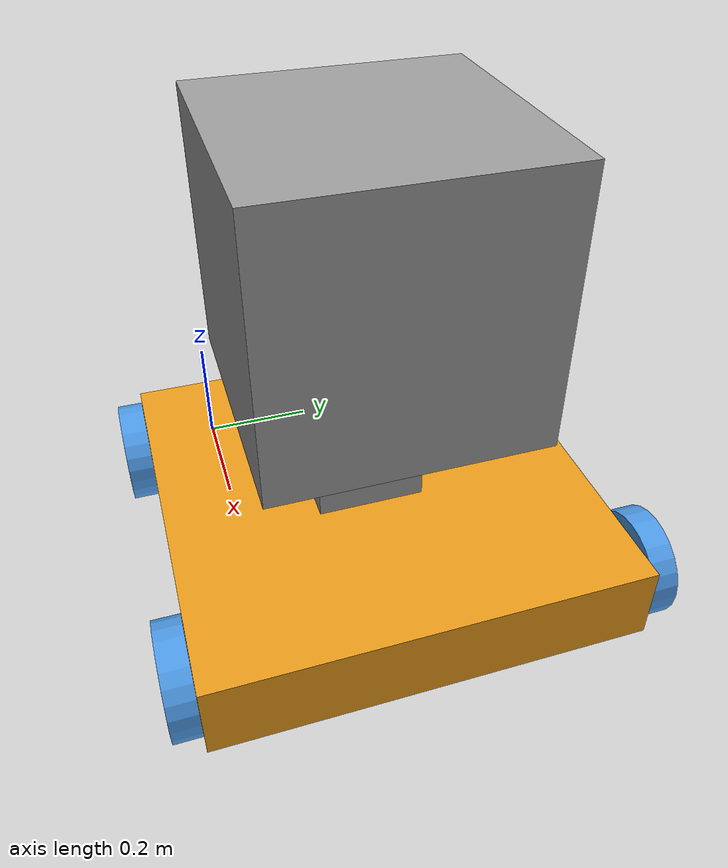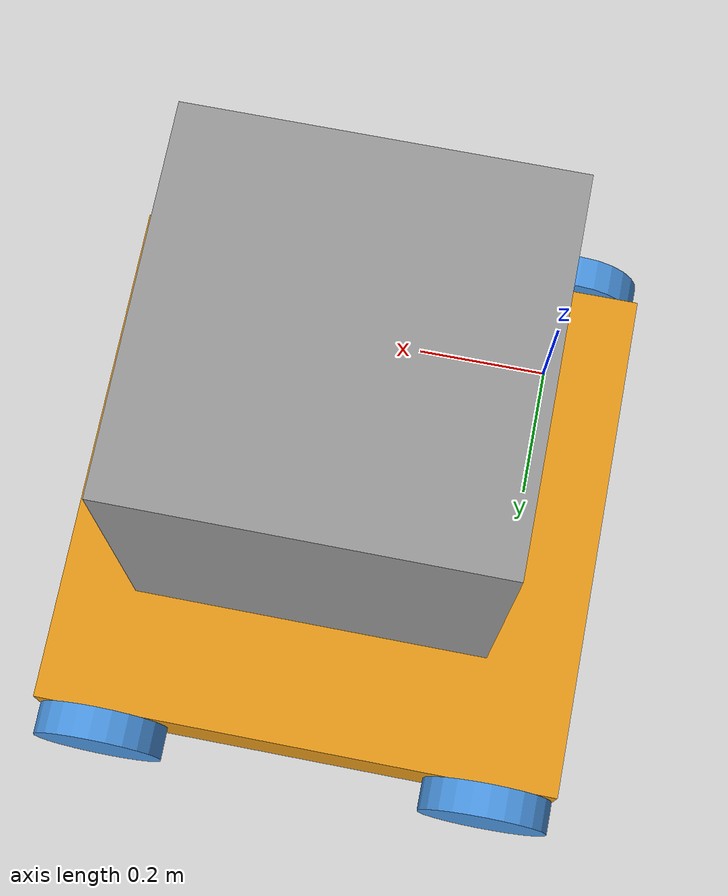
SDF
<?xml version='1.0'?>
<sdf version='1.7'>
  <model name='mobile_robot'>
    <link name='link_0'>
      <inertial>
        <mass>1</mass>
        <inertia>
          <ixx>0.166667</ixx>
          <ixy>0</ixy>
          <ixz>0</ixz>
          <iyy>0.166667</iyy>
          <iyz>0</iyz>
          <izz>0.166667</izz>
        </inertia>
        <pose>0 0 0 0 -0 0</pose>
      </inertial>
      <pose>0.273569 0.265109 -0.040714 0 -0 0</pose>
      <gravity>1</gravity>
      <self_collide>0</self_collide>
      <kinematic>0</kinematic>
      <enable_wind>0</enable_wind>
      <visual name='visual'>
        <pose>0 0 0 0 -0 0</pose>
        <geometry>
          <box>
            <size>0.8 0.8 0.15</size>
          </box>
        </geometry>
        <material>
          <lighting>1</lighting>
          <script>
            <uri>file://media/materials/scripts/gazebo.material</uri>
            <name>Gazebo/Grey</name>
          </script>
          <shader type='pixel'>
            <normal_map>__default__</normal_map>
          </shader>
          <ambient>0.9 0.6 0.1 1</ambient>
          <diffuse>0.9 0.6 0.1 1</diffuse>
          <specular>0.01 0.01 0.01 1</specular>
          <emissive>0 0 0 1</emissive>
        </material>
        <transparency>0</transparency>
        <cast_shadows>1</cast_shadows>
      </visual>
      <collision name='collision'>
        <laser_retro>0</laser_retro>
        <max_contacts>10</max_contacts>
        <pose>0 0 0 0 -0 0</pose>
        <geometry>
          <box>
            <size>0.8 0.8 0.15</size>
          </box>
        </geometry>
        <surface>
          <friction>
            <ode>
              <mu>1</mu>
              <mu2>1</mu2>
              <fdir1>0 0 0</fdir1>
              <slip1>0</slip1>
              <slip2>0</slip2>
            </ode>
            <torsional>
              <coefficient>1</coefficient>
              <patch_radius>0</patch_radius>
              <surface_radius>0</surface_radius>
              <use_patch_radius>1</use_patch_radius>
              <ode>
                <slip>0</slip>
              </ode>
            </torsional>
          </friction>
          <bounce>
            <restitution_coefficient>0</restitution_coefficient>
            <threshold>1e+06</threshold>
          </bounce>
          <contact>
            <collide_without_contact>0</collide_without_contact>
            <collide_without_contact_bitmask>1</collide_without_contact_bitmask>
            <collide_bitmask>1</collide_bitmask>
            <ode>
              <soft_cfm>0</soft_cfm>
              <soft_erp>0.2</soft_erp>
              <kp>1e+13</kp>
              <kd>1</kd>
              <max_vel>0.01</max_vel>
              <min_depth>0</min_depth>
            </ode>
            <bullet>
              <split_impulse>1</split_impulse>
              <split_impulse_penetration_threshold>-0.01</split_impulse_penetration_threshold>
              <soft_cfm>0</soft_cfm>
              <soft_erp>0.2</soft_erp>
              <kp>1e+13</kp>
              <kd>1</kd>
            </bullet>
          </contact>
        </surface>
      </collision>
    </link>
    <link name='link_2'>
      <inertial>
        <mass>1</mass>
        <inertia>
          <ixx>0.145833</ixx>
          <ixy>0</ixy>
          <ixz>0</ixz>
          <iyy>0.145833</iyy>
          <iyz>0</iyz>
          <izz>0.125</izz>
        </inertia>
        <pose>0 0 0 0 -0 0</pose>
      </inertial>
      <pose>-0.026431 0.690329 -0.040714 0 -0 0</pose>
      <gravity>1</gravity>
      <self_collide>0</self_collide>
      <kinematic>0</kinematic>
      <enable_wind>0</enable_wind>
      <visual name='visual'>
        <pose>0 0 0 1.573 -0 0</pose>
        <geometry>
          <cylinder>
            <radius>0.1</radius>
            <length>0.05</length>
          </cylinder>
        </geometry>
        <material>
          <lighting>1</lighting>
          <script>
            <uri>file://media/materials/scripts/gazebo.material</uri>
            <name>Gazebo/Grey</name>
          </script>
          <shader type='pixel'>
            <normal_map>__default__</normal_map>
          </shader>
          <ambient>0.1 0.2 0.8 1</ambient>
          <diffuse>0.3 0.6 0.9 1</diffuse>
          <specular>0.01 0.01 0.01 1</specular>
          <emissive>0 0 0 1</emissive>
        </material>
        <transparency>0</transparency>
        <cast_shadows>1</cast_shadows>
      </visual>
      <collision name='collision'>
        <laser_retro>0</laser_retro>
        <max_contacts>10</max_contacts>
        <pose>0 0 0 1.573 -0 0</pose>
        <geometry>
          <cylinder>
            <radius>0.1</radius>
            <length>0.05</length>
          </cylinder>
        </geometry>
        <surface>
          <friction>
            <ode>
              <mu>1</mu>
              <mu2>1</mu2>
              <fdir1>0 0 0</fdir1>
              <slip1>0</slip1>
              <slip2>0</slip2>
            </ode>
            <torsional>
              <coefficient>1</coefficient>
              <patch_radius>0</patch_radius>
              <surface_radius>0</surface_radius>
              <use_patch_radius>1</use_patch_radius>
              <ode>
                <slip>0</slip>
              </ode>
            </torsional>
          </friction>
          <bounce>
            <restitution_coefficient>0</restitution_coefficient>
            <threshold>1e+06</threshold>
          </bounce>
          <contact>
            <collide_without_contact>0</collide_without_contact>
            <collide_without_contact_bitmask>1</collide_without_contact_bitmask>
            <collide_bitmask>1</collide_bitmask>
            <ode>
              <soft_cfm>0</soft_cfm>
              <soft_erp>0.2</soft_erp>
              <kp>1e+13</kp>
              <kd>1</kd>
              <max_vel>0.01</max_vel>
              <min_depth>0</min_depth>
            </ode>
            <bullet>
              <split_impulse>1</split_impulse>
              <split_impulse_penetration_threshold>-0.01</split_impulse_penetration_threshold>
              <soft_cfm>0</soft_cfm>
              <soft_erp>0.2</soft_erp>
              <kp>1e+13</kp>
              <kd>1</kd>
            </bullet>
          </contact>
        </surface>
      </collision>
    </link>
    <link name='link_2_clone'>
      <inertial>
        <mass>1</mass>
        <inertia>
          <ixx>0.145833</ixx>
          <ixy>0</ixy>
          <ixz>0</ixz>
          <iyy>0.145833</iyy>
          <iyz>0</iyz>
          <izz>0.125</izz>
        </inertia>
        <pose>0 0 0 0 -0 0</pose>
      </inertial>
      <pose>-0.026431 -0.160112 -0.040714 0 -0 0</pose>
      <gravity>1</gravity>
      <self_collide>0</self_collide>
      <kinematic>0</kinematic>
      <enable_wind>0</enable_wind>
      <visual name='visual'>
        <pose>0 0 0 1.573 -0 0</pose>
        <geometry>
          <cylinder>
            <radius>0.1</radius>
            <length>0.05</length>
          </cylinder>
        </geometry>
        <material>
          <lighting>1</lighting>
          <script>
            <uri>file://media/materials/scripts/gazebo.material</uri>
            <name>Gazebo/Grey</name>
          </script>
          <shader type='pixel'>
            <normal_map>__default__</normal_map>
          </shader>
          <ambient>0.1 0.2 0.8 1</ambient>
          <diffuse>0.3 0.6 0.9 1</diffuse>
          <specular>0.01 0.01 0.01 1</specular>
          <emissive>0 0 0 1</emissive>
        </material>
        <transparency>0</transparency>
        <cast_shadows>1</cast_shadows>
      </visual>
      <collision name='collision'>
        <laser_retro>0</laser_retro>
        <max_contacts>10</max_contacts>
        <pose>0 0 0 1.573 -0 0</pose>
        <geometry>
          <cylinder>
            <radius>0.1</radius>
            <length>0.05</length>
          </cylinder>
        </geometry>
        <surface>
          <friction>
            <ode>
              <mu>1</mu>
              <mu2>1</mu2>
              <fdir1>0 0 0</fdir1>
              <slip1>0</slip1>
              <slip2>0</slip2>
            </ode>
            <torsional>
              <coefficient>1</coefficient>
              <patch_radius>0</patch_radius>
              <surface_radius>0</surface_radius>
              <use_patch_radius>1</use_patch_radius>
              <ode>
                <slip>0</slip>
              </ode>
            </torsional>
          </friction>
          <bounce>
            <restitution_coefficient>0</restitution_coefficient>
            <threshold>1e+06</threshold>
          </bounce>
          <contact>
            <collide_without_contact>0</collide_without_contact>
            <collide_without_contact_bitmask>1</collide_without_contact_bitmask>
            <collide_bitmask>1</collide_bitmask>
            <ode>
              <soft_cfm>0</soft_cfm>
              <soft_erp>0.2</soft_erp>
              <kp>1e+13</kp>
              <kd>1</kd>
              <max_vel>0.01</max_vel>
              <min_depth>0</min_depth>
            </ode>
            <bullet>
              <split_impulse>1</split_impulse>
              <split_impulse_penetration_threshold>-0.01</split_impulse_penetration_threshold>
              <soft_cfm>0</soft_cfm>
              <soft_erp>0.2</soft_erp>
              <kp>1e+13</kp>
              <kd>1</kd>
            </bullet>
          </contact>
        </surface>
      </collision>
    </link>
    <link name='link_2_clone_0'>
      <inertial>
        <mass>1</mass>
        <inertia>
          <ixx>0.145833</ixx>
          <ixy>0</ixy>
          <ixz>0</ixz>
          <iyy>0.145833</iyy>
          <iyz>0</iyz>
          <izz>0.125</izz>
        </inertia>
        <pose>0 0 0 0 -0 0</pose>
      </inertial>
      <pose>0.573569 0.690329 -0.040714 0 -0 0</pose>
      <gravity>1</gravity>
      <self_collide>0</self_collide>
      <kinematic>0</kinematic>
      <enable_wind>0</enable_wind>
      <visual name='visual'>
        <pose>0 0 0 1.573 -0 0</pose>
        <geometry>
          <cylinder>
            <radius>0.1</radius>
            <length>0.05</length>
          </cylinder>
        </geometry>
        <material>
          <lighting>1</lighting>
          <script>
            <uri>file://media/materials/scripts/gazebo.material</uri>
            <name>Gazebo/Grey</name>
          </script>
          <shader type='pixel'>
            <normal_map>__default__</normal_map>
          </shader>
          <ambient>0.1 0.2 0.8 1</ambient>
          <diffuse>0.3 0.6 0.9 1</diffuse>
          <specular>0.01 0.01 0.01 1</specular>
          <emissive>0 0 0 1</emissive>
        </material>
        <transparency>0</transparency>
        <cast_shadows>1</cast_shadows>
      </visual>
      <collision name='collision'>
        <laser_retro>0</laser_retro>
        <max_contacts>10</max_contacts>
        <pose>0 0 0 1.573 -0 0</pose>
        <geometry>
          <cylinder>
            <radius>0.1</radius>
            <length>0.05</length>
          </cylinder>
        </geometry>
        <surface>
          <friction>
            <ode>
              <mu>1</mu>
              <mu2>1</mu2>
              <fdir1>0 0 0</fdir1>
              <slip1>0</slip1>
              <slip2>0</slip2>
            </ode>
            <torsional>
              <coefficient>1</coefficient>
              <patch_radius>0</patch_radius>
              <surface_radius>0</surface_radius>
              <use_patch_radius>1</use_patch_radius>
              <ode>
                <slip>0</slip>
              </ode>
            </torsional>
          </friction>
          <bounce>
            <restitution_coefficient>0</restitution_coefficient>
            <threshold>1e+06</threshold>
          </bounce>
          <contact>
            <collide_without_contact>0</collide_without_contact>
            <collide_without_contact_bitmask>1</collide_without_contact_bitmask>
            <collide_bitmask>1</collide_bitmask>
            <ode>
              <soft_cfm>0</soft_cfm>
              <soft_erp>0.2</soft_erp>
              <kp>1e+13</kp>
              <kd>1</kd>
              <max_vel>0.01</max_vel>
              <min_depth>0</min_depth>
            </ode>
            <bullet>
              <split_impulse>1</split_impulse>
              <split_impulse_penetration_threshold>-0.01</split_impulse_penetration_threshold>
              <soft_cfm>0</soft_cfm>
              <soft_erp>0.2</soft_erp>
              <kp>1e+13</kp>
              <kd>1</kd>
            </bullet>
          </contact>
        </surface>
      </collision>
    </link>
    <link name='link_2_clone_1'>
      <inertial>
        <mass>1</mass>
        <inertia>
          <ixx>0.145833</ixx>
          <ixy>0</ixy>
          <ixz>0</ixz>
          <iyy>0.145833</iyy>
          <iyz>0</iyz>
          <izz>0.125</izz>
        </inertia>
        <pose>0 0 0 0 -0 0</pose>
      </inertial>
      <pose>0.573569 -0.160112 -0.040714 0 -0 0</pose>
      <gravity>1</gravity>
      <self_collide>0</self_collide>
      <kinematic>0</kinematic>
      <enable_wind>0</enable_wind>
      <visual name='visual'>
        <pose>0 0 0 1.573 -0 0</pose>
        <geometry>
          <cylinder>
            <radius>0.1</radius>
            <length>0.05</length>
          </cylinder>
        </geometry>
        <material>
          <lighting>1</lighting>
          <script>
            <uri>file://media/materials/scripts/gazebo.material</uri>
            <name>Gazebo/Grey</name>
          </script>
          <shader type='pixel'>
            <normal_map>__default__</normal_map>
          </shader>
          <ambient>0.1 0.2 0.8 1</ambient>
          <diffuse>0.3 0.6 0.9 1</diffuse>
          <specular>0.01 0.01 0.01 1</specular>
          <emissive>0 0 0 1</emissive>
        </material>
        <transparency>0</transparency>
        <cast_shadows>1</cast_shadows>
      </visual>
      <collision name='collision'>
        <laser_retro>0</laser_retro>
        <max_contacts>10</max_contacts>
        <pose>0 0 0 1.573 -0 0</pose>
        <geometry>
          <cylinder>
            <radius>0.1</radius>
            <length>0.05</length>
          </cylinder>
        </geometry>
        <surface>
          <friction>
            <ode>
              <mu>1</mu>
              <mu2>1</mu2>
              <fdir1>0 0 0</fdir1>
              <slip1>0</slip1>
              <slip2>0</slip2>
            </ode>
            <torsional>
              <coefficient>1</coefficient>
              <patch_radius>0</patch_radius>
              <surface_radius>0</surface_radius>
              <use_patch_radius>1</use_patch_radius>
              <ode>
                <slip>0</slip>
              </ode>
            </torsional>
          </friction>
          <bounce>
            <restitution_coefficient>0</restitution_coefficient>
            <threshold>1e+06</threshold>
          </bounce>
          <contact>
            <collide_without_contact>0</collide_without_contact>
            <collide_without_contact_bitmask>1</collide_without_contact_bitmask>
            <collide_bitmask>1</collide_bitmask>
            <ode>
              <soft_cfm>0</soft_cfm>
              <soft_erp>0.2</soft_erp>
              <kp>1e+13</kp>
              <kd>1</kd>
              <max_vel>0.01</max_vel>
              <min_depth>0</min_depth>
            </ode>
            <bullet>
              <split_impulse>1</split_impulse>
              <split_impulse_penetration_threshold>-0.01</split_impulse_penetration_threshold>
              <soft_cfm>0</soft_cfm>
              <soft_erp>0.2</soft_erp>
              <kp>1e+13</kp>
              <kd>1</kd>
            </bullet>
          </contact>
        </surface>
      </collision>
    </link>
    <link name='link_4'>
      <inertial>
        <mass>1</mass>
        <inertia>
          <ixx>0.166667</ixx>
          <ixy>0</ixy>
          <ixz>0</ixz>
          <iyy>0.166667</iyy>
          <iyz>0</iyz>
          <izz>0.166667</izz>
        </inertia>
        <pose>0 0 0 0 -0 0</pose>
      </inertial>
      <pose>0.253569 0.245109 0.144286 0 -0 0</pose>
      <gravity>1</gravity>
      <self_collide>0</self_collide>
      <kinematic>0</kinematic>
      <enable_wind>0</enable_wind>
      <visual name='visual'>
        <pose>0 0 0 0 -0 0</pose>
        <geometry>
          <box>
            <size>0.2 0.2 0.3</size>
          </box>
        </geometry>
        <material>
          <lighting>1</lighting>
          <script>
            <uri>file://media/materials/scripts/gazebo.material</uri>
            <name>Gazebo/Grey</name>
          </script>
          <shader type='pixel'>
            <normal_map>__default__</normal_map>
          </shader>
          <ambient>0.3 0.3 0.3 1</ambient>
          <diffuse>0.4 0.4 0.4 1</diffuse>
          <specular>0.01 0.01 0.01 1</specular>
          <emissive>0 0 0 1</emissive>
        </material>
        <transparency>0</transparency>
        <cast_shadows>1</cast_shadows>
      </visual>
      <collision name='collision'>
        <laser_retro>0</laser_retro>
        <max_contacts>10</max_contacts>
        <pose>0 0 0 0 -0 0</pose>
        <geometry>
          <box>
            <size>0.2 0.2 0.3</size>
          </box>
        </geometry>
        <surface>
          <friction>
            <ode>
              <mu>1</mu>
              <mu2>1</mu2>
              <fdir1>0 0 0</fdir1>
              <slip1>0</slip1>
              <slip2>0</slip2>
            </ode>
            <torsional>
              <coefficient>1</coefficient>
              <patch_radius>0</patch_radius>
              <surface_radius>0</surface_radius>
              <use_patch_radius>1</use_patch_radius>
              <ode>
                <slip>0</slip>
              </ode>
            </torsional>
          </friction>
          <bounce>
            <restitution_coefficient>0</restitution_coefficient>
            <threshold>1e+06</threshold>
          </bounce>
          <contact>
            <collide_without_contact>0</collide_without_contact>
            <collide_without_contact_bitmask>1</collide_without_contact_bitmask>
            <collide_bitmask>1</collide_bitmask>
            <ode>
              <soft_cfm>0</soft_cfm>
              <soft_erp>0.2</soft_erp>
              <kp>1e+13</kp>
              <kd>1</kd>
              <max_vel>0.01</max_vel>
              <min_depth>0</min_depth>
            </ode>
            <bullet>
              <split_impulse>1</split_impulse>
              <split_impulse_penetration_threshold>-0.01</split_impulse_penetration_threshold>
              <soft_cfm>0</soft_cfm>
              <soft_erp>0.2</soft_erp>
              <kp>1e+13</kp>
              <kd>1</kd>
            </bullet>
          </contact>
        </surface>
      </collision>
    </link>
    <link name='link_6'>
      <inertial>
        <mass>1</mass>
        <inertia>
          <ixx>0.166667</ixx>
          <ixy>0</ixy>
          <ixz>0</ixz>
          <iyy>0.166667</iyy>
          <iyz>0</iyz>
          <izz>0.166667</izz>
        </inertia>
        <pose>0 0 0 0 -0 0</pose>
      </inertial>
      <pose>0.273569 0.265109 0.494286 0 -0 0</pose>
      <gravity>1</gravity>
      <self_collide>0</self_collide>
      <kinematic>0</kinematic>
      <enable_wind>0</enable_wind>
      <visual name='visual'>
        <pose>0 0 0 0 -0 0</pose>
        <geometry>
          <box>
            <size>0.5 0.5 0.5</size>
          </box>
        </geometry>
        <material>
          <lighting>1</lighting>
          <script>
            <uri>file://media/materials/scripts/gazebo.material</uri>
            <name>Gazebo/Grey</name>
          </script>
          <shader type='pixel'>
            <normal_map>__default__</normal_map>
          </shader>
          <ambient>0.3 0.3 0.3 1</ambient>
          <diffuse>0.4 0.4 0.4 1</diffuse>
          <specular>0.01 0.01 0.01 1</specular>
          <emissive>0 0 0 1</emissive>
        </material>
        <transparency>0</transparency>
        <cast_shadows>1</cast_shadows>
      </visual>
      <collision name='collision'>
        <laser_retro>0</laser_retro>
        <max_contacts>10</max_contacts>
        <pose>0 0 0 0 -0 0</pose>
        <geometry>
          <box>
            <size>0.5 0.5 0.5</size>
          </box>
        </geometry>
        <surface>
          <friction>
            <ode>
              <mu>1</mu>
              <mu2>1</mu2>
              <fdir1>0 0 0</fdir1>
              <slip1>0</slip1>
              <slip2>0</slip2>
            </ode>
            <torsional>
              <coefficient>1</coefficient>
              <patch_radius>0</patch_radius>
              <surface_radius>0</surface_radius>
              <use_patch_radius>1</use_patch_radius>
              <ode>
                <slip>0</slip>
              </ode>
            </torsional>
          </friction>
          <bounce>
            <restitution_coefficient>0</restitution_coefficient>
            <threshold>1e+06</threshold>
          </bounce>
          <contact>
            <collide_without_contact>0</collide_without_contact>
            <collide_without_contact_bitmask>1</collide_without_contact_bitmask>
            <collide_bitmask>1</collide_bitmask>
            <ode>
              <soft_cfm>0</soft_cfm>
              <soft_erp>0.2</soft_erp>
              <kp>1e+13</kp>
              <kd>1</kd>
              <max_vel>0.01</max_vel>
              <min_depth>0</min_depth>
            </ode>
            <bullet>
              <split_impulse>1</split_impulse>
              <split_impulse_penetration_threshold>-0.01</split_impulse_penetration_threshold>
              <soft_cfm>0</soft_cfm>
              <soft_erp>0.2</soft_erp>
              <kp>1e+13</kp>
              <kd>1</kd>
            </bullet>
          </contact>
        </surface>
      </collision>
    </link>
    <joint name='link_0_JOINT_1' type='revolute'>
      <parent>link_0</parent>
      <child>link_2</child>
      <pose>0 0 0 0 -0 0</pose>
      <axis>
        <xyz>1 0 0</xyz>
        <limit>
          <lower>-1.79769e+308</lower>
          <upper>1.79769e+308</upper>
          <effort>-1</effort>
          <velocity>-1</velocity>
        </limit>
        <dynamics>
          <spring_reference>0</spring_reference>
          <spring_stiffness>0</spring_stiffness>
          <damping>0</damping>
        </dynamics>
      </axis>
      <physics>
        <ode>
          <limit>
            <cfm>0</cfm>
            <erp>0.2</erp>
          </limit>
          <suspension>
            <cfm>0</cfm>
            <erp>0.2</erp>
          </suspension>
        </ode>
      </physics>
    </joint>
    <joint name='link_0_JOINT_2' type='revolute'>
      <parent>link_0</parent>
      <child>link_2_clone</child>
      <pose>0 0 0 0 -0 0</pose>
      <axis>
        <xyz>1 0 0</xyz>
        <limit>
          <lower>-1.79769e+308</lower>
          <upper>1.79769e+308</upper>
          <effort>-1</effort>
          <velocity>-1</velocity>
        </limit>
        <dynamics>
          <spring_reference>0</spring_reference>
          <spring_stiffness>0</spring_stiffness>
          <damping>0</damping>
        </dynamics>
      </axis>
      <physics>
        <ode>
          <limit>
            <cfm>0</cfm>
            <erp>0.2</erp>
          </limit>
          <suspension>
            <cfm>0</cfm>
            <erp>0.2</erp>
          </suspension>
        </ode>
      </physics>
    </joint>
    <joint name='link_0_JOINT_3' type='revolute'>
      <parent>link_0</parent>
      <child>link_2_clone_0</child>
      <pose>0 0 0 0 -0 0</pose>
      <axis>
        <xyz>1 0 0</xyz>
        <limit>
          <lower>-1.79769e+308</lower>
          <upper>1.79769e+308</upper>
          <effort>-1</effort>
          <velocity>-1</velocity>
        </limit>
        <dynamics>
          <spring_reference>0</spring_reference>
          <spring_stiffness>0</spring_stiffness>
          <damping>0</damping>
        </dynamics>
      </axis>
      <physics>
        <ode>
          <limit>
            <cfm>0</cfm>
            <erp>0.2</erp>
          </limit>
          <suspension>
            <cfm>0</cfm>
            <erp>0.2</erp>
          </suspension>
        </ode>
      </physics>
    </joint>
    <joint name='link_0_JOINT_4' type='revolute'>
      <parent>link_0</parent>
      <child>link_2_clone_1</child>
      <pose>0 0 0 0 -0 0</pose>
      <axis>
        <xyz>1 0 0</xyz>
        <limit>
          <lower>-1.79769e+308</lower>
          <upper>1.79769e+308</upper>
          <effort>-1</effort>
          <velocity>-1</velocity>
        </limit>
        <dynamics>
          <spring_reference>0</spring_reference>
          <spring_stiffness>0</spring_stiffness>
          <damping>0</damping>
        </dynamics>
      </axis>
      <physics>
        <ode>
          <limit>
            <cfm>0</cfm>
            <erp>0.2</erp>
          </limit>
          <suspension>
            <cfm>0</cfm>
            <erp>0.2</erp>
          </suspension>
        </ode>
      </physics>
    </joint>
    <joint name='link_0_JOINT_5' type='fixed'>
      <parent>link_0</parent>
      <child>link_4</child>
      <pose>0 0 0.05 0 -0 0</pose>
      <physics>
        <ode>
          <limit>
            <cfm>0</cfm>
            <erp>0.2</erp>
          </limit>
          <suspension>
            <cfm>0</cfm>
            <erp>0.2</erp>
          </suspension>
        </ode>
      </physics>
    </joint>
    <joint name='link_4_JOINT_6' type='fixed'>
      <parent>link_4</parent>
      <child>link_6</child>
      <pose>0 0 0 0 -0 0</pose>
      <physics>
        <ode>
          <limit>
            <cfm>0</cfm>
            <erp>0.2</erp>
          </limit>
          <suspension>
            <cfm>0</cfm>
            <erp>0.2</erp>
          </suspension>
        </ode>
      </physics>
    </joint>
    <static>0</static>
    <allow_auto_disable>1</allow_auto_disable>
  </model>
</sdf>
